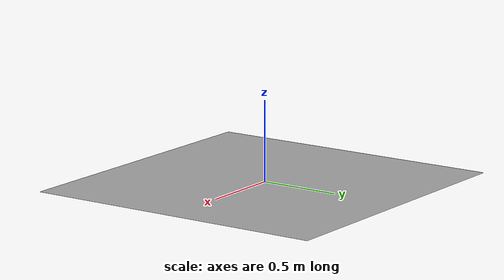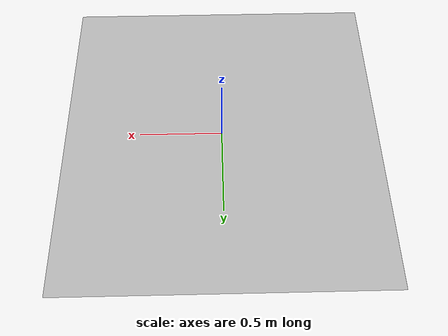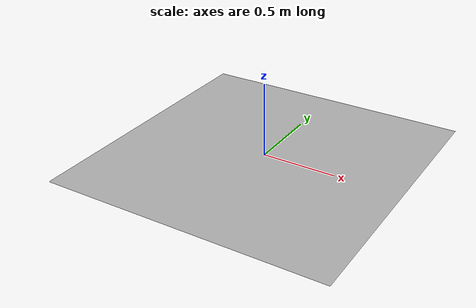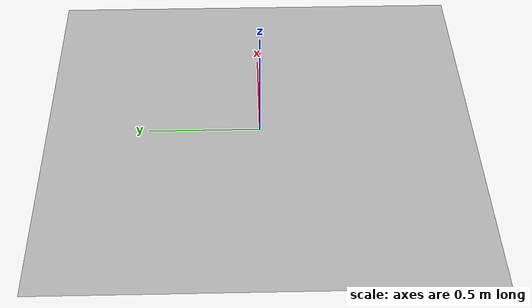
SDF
<?xml version="1.0" ?>
<sdf version="1.5">
  <model name="billboard_1">
    <static>true</static>
      <link name="billboard_1">
        <collision name="billboard-collision">
          <pose>0 0 0 0 0 0</pose>
          <geometry>
            <box>
              <size>0.297 0.42 0.00</size>
            </box>
          </geometry>
        </collision>
        <visual name="billboard-visual">
          <pose>0 0 0 0 0 0</pose>
          <geometry>
            <box>
              <size>1.91 1.91 0.00</size>
            </box>
          </geometry>
          <material>
            <script>
              <uri>model://billboard_1/materials/scripts</uri>
              <uri>model://billboard_1/materials/textures</uri>
              <name>billboard_1/Diffuse</name>
            </script>
          </material>
        </visual>
      </link>
  </model>
</sdf>
